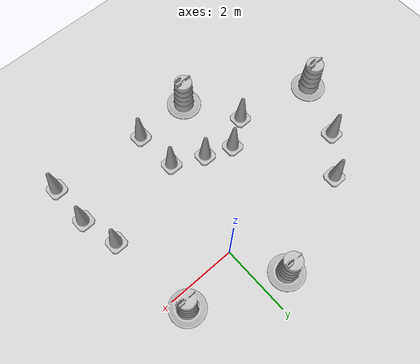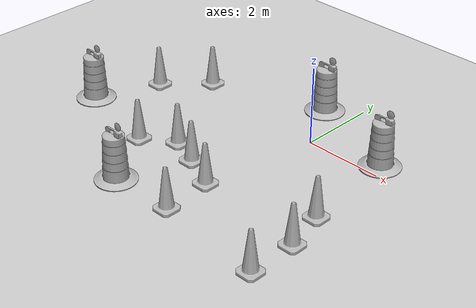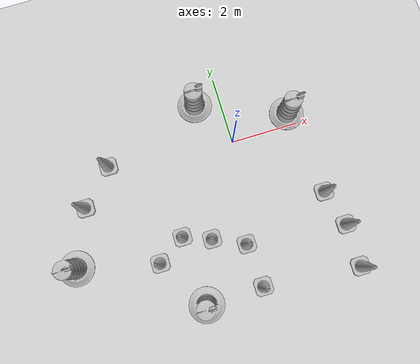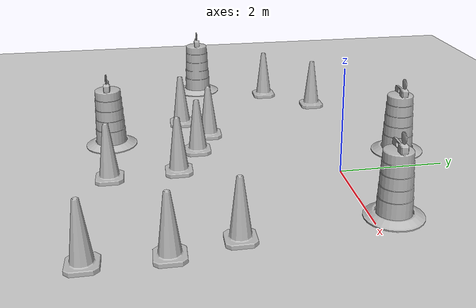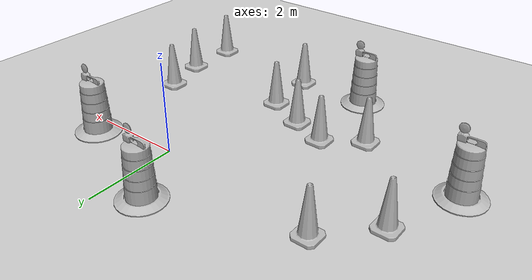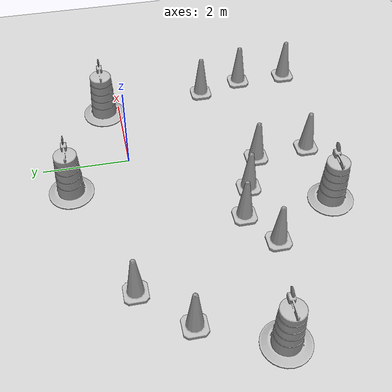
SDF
<sdf version='1.7'>
  <world name='default'>
    <light name='sun' type='directional'>
      <cast_shadows>0</cast_shadows>
      <pose>0 0 10 0 -0 0</pose>
      <diffuse>0.8 0.8 0.8 1</diffuse>
      <specular>0.2 0.2 0.2 1</specular>
      <attenuation>
        <range>1000</range>
        <constant>0.9</constant>
        <linear>0.01</linear>
        <quadratic>0.001</quadratic>
      </attenuation>
      <direction>-0.5 0.1 -0.9</direction>
      <spot>
        <inner_angle>0</inner_angle>
        <outer_angle>0</outer_angle>
        <falloff>0</falloff>
      </spot>
    </light>
    <model name='ground_plane'>
      <static>1</static>
      <link name='link'>
        <collision name='collision'>
          <geometry>
            <plane>
              <normal>0 0 1</normal>
              <size>100 100</size>
            </plane>
          </geometry>
          <surface>
            <contact>
              <collide_bitmask>65535</collide_bitmask>
              <ode/>
            </contact>
            <friction>
              <ode>
                <mu>100</mu>
                <mu2>50</mu2>
              </ode>
              <torsional>
                <ode/>
              </torsional>
            </friction>
            <bounce/>
          </surface>
          <max_contacts>10</max_contacts>
        </collision>
        <visual name='visual'>
          <cast_shadows>0</cast_shadows>
          <geometry>
            <plane>
              <normal>0 0 1</normal>
              <size>100 100</size>
            </plane>
          </geometry>
          <material>
            <script>
              <uri>file://media/materials/scripts/gazebo.material</uri>
              <name>Gazebo/Grey</name>
            </script>
          </material>
        </visual>
        <self_collide>0</self_collide>
        <enable_wind>0</enable_wind>
        <kinematic>0</kinematic>
      </link>
    </model>

    <!-- Plugins -->
    <plugin
      filename="ignition-gazebo-physics-system"
      name="ignition::gazebo::systems::Physics">
    </plugin>
    <plugin
      filename="ignition-gazebo-user-commands-system"
      name="ignition::gazebo::systems::UserCommands">
    </plugin>
    <plugin
      filename="ignition-gazebo-scene-broadcaster-system"
      name="ignition::gazebo::systems::SceneBroadcaster">
    </plugin>
    <plugin
      filename="ignition-gazebo-sensors-system"
      name="ignition::gazebo::systems::Sensors">
      <render_engine>ogre2</render_engine>
    </plugin>
    <plugin
      filename="ignition-gazebo-imu-system"
      name="ignition::gazebo::systems::Imu">
    </plugin>
    <gravity>0 0 -9.8</gravity>
    <magnetic_field>6e-06 2.3e-05 -4.2e-05</magnetic_field>
    <atmosphere type='adiabatic'/>
    <physics type='ode'>
      <max_step_size>0.002</max_step_size>
      <real_time_factor>1</real_time_factor>
      <real_time_update_rate>500</real_time_update_rate>
    </physics>
    <scene>
      <ambient>0.4 0.4 0.4 1</ambient>
      <background>0.7 0.7 0.7 1</background>
      <shadows>0</shadows>
    </scene>
    <wind/>
    <spherical_coordinates>
      <surface_model>EARTH_WGS84</surface_model>
      <latitude_deg>0</latitude_deg>
      <longitude_deg>0</longitude_deg>
      <elevation>0</elevation>
      <heading_deg>0</heading_deg>
    </spherical_coordinates>
    <model name='Construction Barrel'>
      <static>1</static>
      <link name='link'>
        <inertial>
          <pose>0 0 0.4 0 -0 0</pose>
          <mass>500</mass>
          <inertia>
            <ixx>51.2096</ixx>
            <iyy>51.2096</iyy>
            <izz>25</izz>
            <ixy>0</ixy>
            <ixz>0</ixz>
            <iyz>0</iyz>
          </inertia>
        </inertial>
        <collision name='collision'>
          <geometry>
            <mesh>
              <uri>model://construction_barrel/meshes/construction_barrel.dae</uri>
            </mesh>
          </geometry>
          <max_contacts>10</max_contacts>
          <surface>
            <contact>
              <ode/>
            </contact>
            <bounce/>
            <friction>
              <torsional>
                <ode/>
              </torsional>
              <ode/>
            </friction>
          </surface>
        </collision>
        <visual name='visual'>
          <geometry>
            <mesh>
              <uri>model://construction_barrel/meshes/construction_barrel.dae</uri>
            </mesh>
          </geometry>
        </visual>
        <self_collide>0</self_collide>
        <enable_wind>0</enable_wind>
        <kinematic>0</kinematic>
      </link>
      <pose>-0.756237 1.39226 0 0 -0 0</pose>
    </model>
    <model name='Construction Barrel_0'>
      <static>1</static>
      <link name='link'>
        <inertial>
          <pose>0 0 0.4 0 -0 0</pose>
          <mass>500</mass>
          <inertia>
            <ixx>51.2096</ixx>
            <iyy>51.2096</iyy>
            <izz>25</izz>
            <ixy>0</ixy>
            <ixz>0</ixz>
            <iyz>0</iyz>
          </inertia>
        </inertial>
        <collision name='collision'>
          <geometry>
            <mesh>
              <uri>model://construction_barrel/meshes/construction_barrel.dae</uri>
            </mesh>
          </geometry>
          <max_contacts>10</max_contacts>
          <surface>
            <contact>
              <ode/>
            </contact>
            <bounce/>
            <friction>
              <torsional>
                <ode/>
              </torsional>
              <ode/>
            </friction>
          </surface>
        </collision>
        <visual name='visual'>
          <geometry>
            <mesh>
              <uri>model://construction_barrel/meshes/construction_barrel.dae</uri>
            </mesh>
          </geometry>
        </visual>
        <self_collide>0</self_collide>
        <enable_wind>0</enable_wind>
        <kinematic>0</kinematic>
      </link>
      <pose>1.80022 0.377178 0 0 -0 0</pose>
    </model>
    <model name='Construction Cone'>
      <static>1</static>
      <link name='link'>
        <collision name='collision'>
          <geometry>
            <mesh>
              <scale>10 10 10</scale>
              <uri>model://construction_cone/meshes/construction_cone.dae</uri>
            </mesh>
          </geometry>
          <max_contacts>10</max_contacts>
          <surface>
            <contact>
              <ode/>
            </contact>
            <bounce/>
            <friction>
              <torsional>
                <ode/>
              </torsional>
              <ode/>
            </friction>
          </surface>
        </collision>
        <visual name='visual'>
          <geometry>
            <mesh>
              <scale>10 10 10</scale>
              <uri>model://construction_cone/meshes/construction_cone.dae</uri>
            </mesh>
          </geometry>
        </visual>
        <self_collide>0</self_collide>
        <inertial>
          <pose>0 0 0 0 -0 0</pose>
          <inertia>
            <ixx>1</ixx>
            <ixy>0</ixy>
            <ixz>0</ixz>
            <iyy>1</iyy>
            <iyz>0</iyz>
            <izz>1</izz>
          </inertia>
          <mass>1</mass>
        </inertial>
        <enable_wind>0</enable_wind>
        <kinematic>0</kinematic>
      </link>
      <pose>-2.19745 -2.25046 0 0 -0 0</pose>
    </model>
    <model name='Construction Cone_0'>
      <static>1</static>
      <link name='link'>
        <collision name='collision'>
          <geometry>
            <mesh>
              <scale>10 10 10</scale>
              <uri>model://construction_cone/meshes/construction_cone.dae</uri>
            </mesh>
          </geometry>
          <max_contacts>10</max_contacts>
          <surface>
            <contact>
              <ode/>
            </contact>
            <bounce/>
            <friction>
              <torsional>
                <ode/>
              </torsional>
              <ode/>
            </friction>
          </surface>
        </collision>
        <visual name='visual'>
          <geometry>
            <mesh>
              <scale>10 10 10</scale>
              <uri>model://construction_cone/meshes/construction_cone.dae</uri>
            </mesh>
          </geometry>
        </visual>
        <self_collide>0</self_collide>
        <inertial>
          <pose>0 0 0 0 -0 0</pose>
          <inertia>
            <ixx>1</ixx>
            <ixy>0</ixy>
            <ixz>0</ixz>
            <iyy>1</iyy>
            <iyz>0</iyz>
            <izz>1</izz>
          </inertia>
          <mass>1</mass>
        </inertial>
        <enable_wind>0</enable_wind>
        <kinematic>0</kinematic>
      </link>
      <pose>-1.40494 -2.55135 0 0 -0 0</pose>
    </model>
    <model name='Construction Cone_1'>
      <static>1</static>
      <link name='link'>
        <collision name='collision'>
          <geometry>
            <mesh>
              <scale>10 10 10</scale>
              <uri>model://construction_cone/meshes/construction_cone.dae</uri>
            </mesh>
          </geometry>
          <max_contacts>10</max_contacts>
          <surface>
            <contact>
              <ode/>
            </contact>
            <bounce/>
            <friction>
              <torsional>
                <ode/>
              </torsional>
              <ode/>
            </friction>
          </surface>
        </collision>
        <visual name='visual'>
          <geometry>
            <mesh>
              <scale>10 10 10</scale>
              <uri>model://construction_cone/meshes/construction_cone.dae</uri>
            </mesh>
          </geometry>
        </visual>
        <self_collide>0</self_collide>
        <inertial>
          <pose>0 0 0 0 -0 0</pose>
          <inertia>
            <ixx>1</ixx>
            <ixy>0</ixy>
            <ixz>0</ixz>
            <iyy>1</iyy>
            <iyz>0</iyz>
            <izz>1</izz>
          </inertia>
          <mass>1</mass>
        </inertial>
        <enable_wind>0</enable_wind>
        <kinematic>0</kinematic>
      </link>
      <pose>-0.501986 -2.9745 0 0 -0 0</pose>
    </model>
    <model name='Construction Cone_2'>
      <static>1</static>
      <link name='link'>
        <collision name='collision'>
          <geometry>
            <mesh>
              <scale>10 10 10</scale>
              <uri>model://construction_cone/meshes/construction_cone.dae</uri>
            </mesh>
          </geometry>
          <max_contacts>10</max_contacts>
          <surface>
            <contact>
              <ode/>
            </contact>
            <bounce/>
            <friction>
              <torsional>
                <ode/>
              </torsional>
              <ode/>
            </friction>
          </surface>
        </collision>
        <visual name='visual'>
          <geometry>
            <mesh>
              <scale>10 10 10</scale>
              <uri>model://construction_cone/meshes/construction_cone.dae</uri>
            </mesh>
          </geometry>
        </visual>
        <self_collide>0</self_collide>
        <inertial>
          <pose>0 0 0 0 -0 0</pose>
          <inertia>
            <ixx>1</ixx>
            <ixy>0</ixy>
            <ixz>0</ixz>
            <iyy>1</iyy>
            <iyz>0</iyz>
            <izz>1</izz>
          </inertia>
          <mass>1</mass>
        </inertial>
        <enable_wind>0</enable_wind>
        <kinematic>0</kinematic>
      </link>
      <pose>2.09724 -2.18232 0 0 -0 0</pose>
    </model>
    <model name='Construction Cone_3'>
      <static>1</static>
      <link name='link'>
        <collision name='collision'>
          <geometry>
            <mesh>
              <scale>10 10 10</scale>
              <uri>model://construction_cone/meshes/construction_cone.dae</uri>
            </mesh>
          </geometry>
          <max_contacts>10</max_contacts>
          <surface>
            <contact>
              <ode/>
            </contact>
            <bounce/>
            <friction>
              <torsional>
                <ode/>
              </torsional>
              <ode/>
            </friction>
          </surface>
        </collision>
        <visual name='visual'>
          <geometry>
            <mesh>
              <scale>10 10 10</scale>
              <uri>model://construction_cone/meshes/construction_cone.dae</uri>
            </mesh>
          </geometry>
        </visual>
        <self_collide>0</self_collide>
        <inertial>
          <pose>0 0 0 0 -0 0</pose>
          <inertia>
            <ixx>1</ixx>
            <ixy>0</ixy>
            <ixz>0</ixz>
            <iyy>1</iyy>
            <iyz>0</iyz>
            <izz>1</izz>
          </inertia>
          <mass>1</mass>
        </inertial>
        <enable_wind>0</enable_wind>
        <kinematic>0</kinematic>
      </link>
      <pose>-3.69879 0.345038 0 0 -0 0</pose>
    </model>
    <model name='Construction Cone_4'>
      <static>1</static>
      <link name='link'>
        <collision name='collision'>
          <geometry>
            <mesh>
              <scale>10 10 10</scale>
              <uri>model://construction_cone/meshes/construction_cone.dae</uri>
            </mesh>
          </geometry>
          <max_contacts>10</max_contacts>
          <surface>
            <contact>
              <ode/>
            </contact>
            <bounce/>
            <friction>
              <torsional>
                <ode/>
              </torsional>
              <ode/>
            </friction>
          </surface>
        </collision>
        <visual name='visual'>
          <geometry>
            <mesh>
              <scale>10 10 10</scale>
              <uri>model://construction_cone/meshes/construction_cone.dae</uri>
            </mesh>
          </geometry>
        </visual>
        <self_collide>0</self_collide>
        <inertial>
          <pose>0 0 0 0 -0 0</pose>
          <inertia>
            <ixx>1</ixx>
            <ixy>0</ixy>
            <ixz>0</ixz>
            <iyy>1</iyy>
            <iyz>0</iyz>
            <izz>1</izz>
          </inertia>
          <mass>1</mass>
        </inertial>
        <enable_wind>0</enable_wind>
        <kinematic>0</kinematic>
      </link>
      <pose>-0.406438 -4.23374 0 0 -0 0</pose>
    </model>
    <model name='Construction Cone_5'>
      <static>1</static>
      <link name='link'>
        <collision name='collision'>
          <geometry>
            <mesh>
              <scale>10 10 10</scale>
              <uri>model://construction_cone/meshes/construction_cone.dae</uri>
            </mesh>
          </geometry>
          <max_contacts>10</max_contacts>
          <surface>
            <contact>
              <ode/>
            </contact>
            <bounce/>
            <friction>
              <torsional>
                <ode/>
              </torsional>
              <ode/>
            </friction>
          </surface>
        </collision>
        <visual name='visual'>
          <geometry>
            <mesh>
              <scale>10 10 10</scale>
              <uri>model://construction_cone/meshes/construction_cone.dae</uri>
            </mesh>
          </geometry>
        </visual>
        <self_collide>0</self_collide>
        <inertial>
          <pose>0 0 0 0 -0 0</pose>
          <inertia>
            <ixx>1</ixx>
            <ixy>0</ixy>
            <ixz>0</ixz>
            <iyy>1</iyy>
            <iyz>0</iyz>
            <izz>1</izz>
          </inertia>
          <mass>1</mass>
        </inertial>
        <enable_wind>0</enable_wind>
        <kinematic>0</kinematic>
      </link>
      <pose>2.38815 -3.2576 0 0 -0 0</pose>
    </model>
    <model name='Construction Cone_6'>
      <static>1</static>
      <link name='link'>
        <collision name='collision'>
          <geometry>
            <mesh>
              <scale>10 10 10</scale>
              <uri>model://construction_cone/meshes/construction_cone.dae</uri>
            </mesh>
          </geometry>
          <max_contacts>10</max_contacts>
          <surface>
            <contact>
              <ode/>
            </contact>
            <bounce/>
            <friction>
              <torsional>
                <ode/>
              </torsional>
              <ode/>
            </friction>
          </surface>
        </collision>
        <visual name='visual'>
          <geometry>
            <mesh>
              <scale>10 10 10</scale>
              <uri>model://construction_cone/meshes/construction_cone.dae</uri>
            </mesh>
          </geometry>
        </visual>
        <self_collide>0</self_collide>
        <inertial>
          <pose>0 0 0 0 -0 0</pose>
          <inertia>
            <ixx>1</ixx>
            <ixy>0</ixy>
            <ixz>0</ixz>
            <iyy>1</iyy>
            <iyz>0</iyz>
            <izz>1</izz>
          </inertia>
          <mass>1</mass>
        </inertial>
        <enable_wind>0</enable_wind>
        <kinematic>0</kinematic>
      </link>
      <pose>2.39316 -4.49605 0 0 -0 0</pose>
    </model>
    <model name='Construction Cone_7'>
      <static>1</static>
      <link name='link'>
        <collision name='collision'>
          <geometry>
            <mesh>
              <scale>10 10 10</scale>
              <uri>model://construction_cone/meshes/construction_cone.dae</uri>
            </mesh>
          </geometry>
          <max_contacts>10</max_contacts>
          <surface>
            <contact>
              <ode/>
            </contact>
            <bounce/>
            <friction>
              <torsional>
                <ode/>
              </torsional>
              <ode/>
            </friction>
          </surface>
        </collision>
        <visual name='visual'>
          <geometry>
            <mesh>
              <scale>10 10 10</scale>
              <uri>model://construction_cone/meshes/construction_cone.dae</uri>
            </mesh>
          </geometry>
        </visual>
        <self_collide>0</self_collide>
        <inertial>
          <pose>0 0 0 0 -0 0</pose>
          <inertia>
            <ixx>1</ixx>
            <ixy>0</ixy>
            <ixz>0</ixz>
            <iyy>1</iyy>
            <iyz>0</iyz>
            <izz>1</izz>
          </inertia>
          <mass>1</mass>
        </inertial>
        <enable_wind>0</enable_wind>
        <kinematic>0</kinematic>
      </link>
      <pose>-3.00495 -2.78053 0 0 -0 0</pose>
    </model>
    <model name='Construction Cone_8'>
      <static>1</static>
      <link name='link'>
        <collision name='collision'>
          <geometry>
            <mesh>
              <scale>10 10 10</scale>
              <uri>model://construction_cone/meshes/construction_cone.dae</uri>
            </mesh>
          </geometry>
          <max_contacts>10</max_contacts>
          <surface>
            <contact>
              <ode/>
            </contact>
            <bounce/>
            <friction>
              <torsional>
                <ode/>
              </torsional>
              <ode/>
            </friction>
          </surface>
        </collision>
        <visual name='visual'>
          <geometry>
            <mesh>
              <scale>10 10 10</scale>
              <uri>model://construction_cone/meshes/construction_cone.dae</uri>
            </mesh>
          </geometry>
        </visual>
        <self_collide>0</self_collide>
        <inertial>
          <pose>0 0 0 0 -0 0</pose>
          <inertia>
            <ixx>1</ixx>
            <ixy>0</ixy>
            <ixz>0</ixz>
            <iyy>1</iyy>
            <iyz>0</iyz>
            <izz>1</izz>
          </inertia>
          <mass>1</mass>
        </inertial>
        <enable_wind>0</enable_wind>
        <kinematic>0</kinematic>
      </link>
      <pose>-4.64786 -0.646522 0 0 -0 0</pose>
    </model>
    <model name='Construction Barrel_1'>
      <static>1</static>
      <link name='link'>
        <inertial>
          <pose>0 0 0.4 0 -0 0</pose>
          <mass>500</mass>
          <inertia>
            <ixx>51.2096</ixx>
            <iyy>51.2096</iyy>
            <izz>25</izz>
            <ixy>0</ixy>
            <ixz>0</ixz>
            <iyz>0</iyz>
          </inertia>
        </inertial>
        <collision name='collision'>
          <geometry>
            <mesh>
              <uri>model://construction_barrel/meshes/construction_barrel.dae</uri>
            </mesh>
          </geometry>
          <max_contacts>10</max_contacts>
          <surface>
            <contact>
              <ode/>
            </contact>
            <bounce/>
            <friction>
              <torsional>
                <ode/>
              </torsional>
              <ode/>
            </friction>
          </surface>
        </collision>
        <visual name='visual'>
          <geometry>
            <mesh>
              <uri>model://construction_barrel/meshes/construction_barrel.dae</uri>
            </mesh>
          </geometry>
        </visual>
        <self_collide>0</self_collide>
        <enable_wind>0</enable_wind>
        <kinematic>0</kinematic>
      </link>
      <pose>-5.3108 -2.23708 0 0 -0 0</pose>
    </model>
    <model name='Construction Barrel_2'>
      <static>1</static>
      <link name='link'>
        <inertial>
          <pose>0 0 0.4 0 -0 0</pose>
          <mass>500</mass>
          <inertia>
            <ixx>51.2096</ixx>
            <iyy>51.2096</iyy>
            <izz>25</izz>
            <ixy>0</ixy>
            <ixz>0</ixz>
            <iyz>0</iyz>
          </inertia>
        </inertial>
        <collision name='collision'>
          <geometry>
            <mesh>
              <uri>model://construction_barrel/meshes/construction_barrel.dae</uri>
            </mesh>
          </geometry>
          <max_contacts>10</max_contacts>
          <surface>
            <contact>
              <ode/>
            </contact>
            <bounce/>
            <friction>
              <torsional>
                <ode/>
              </torsional>
              <ode/>
            </friction>
          </surface>
        </collision>
        <visual name='visual'>
          <geometry>
            <mesh>
              <uri>model://construction_barrel/meshes/construction_barrel.dae</uri>
            </mesh>
          </geometry>
        </visual>
        <self_collide>0</self_collide>
        <enable_wind>0</enable_wind>
        <kinematic>0</kinematic>
      </link>
      <pose>-2.07692 -4.26198 0 0 -0 0</pose>
    </model>
    <gui fullscreen='0'>
      <camera name='user_camera'>
        <pose>-15.5892 0.392985 21.6628 0 0.851642 0.028194</pose>
        <view_controller>orbit</view_controller>
        <projection_type>perspective</projection_type>
      </camera>
    </gui>
  </world>
</sdf>
